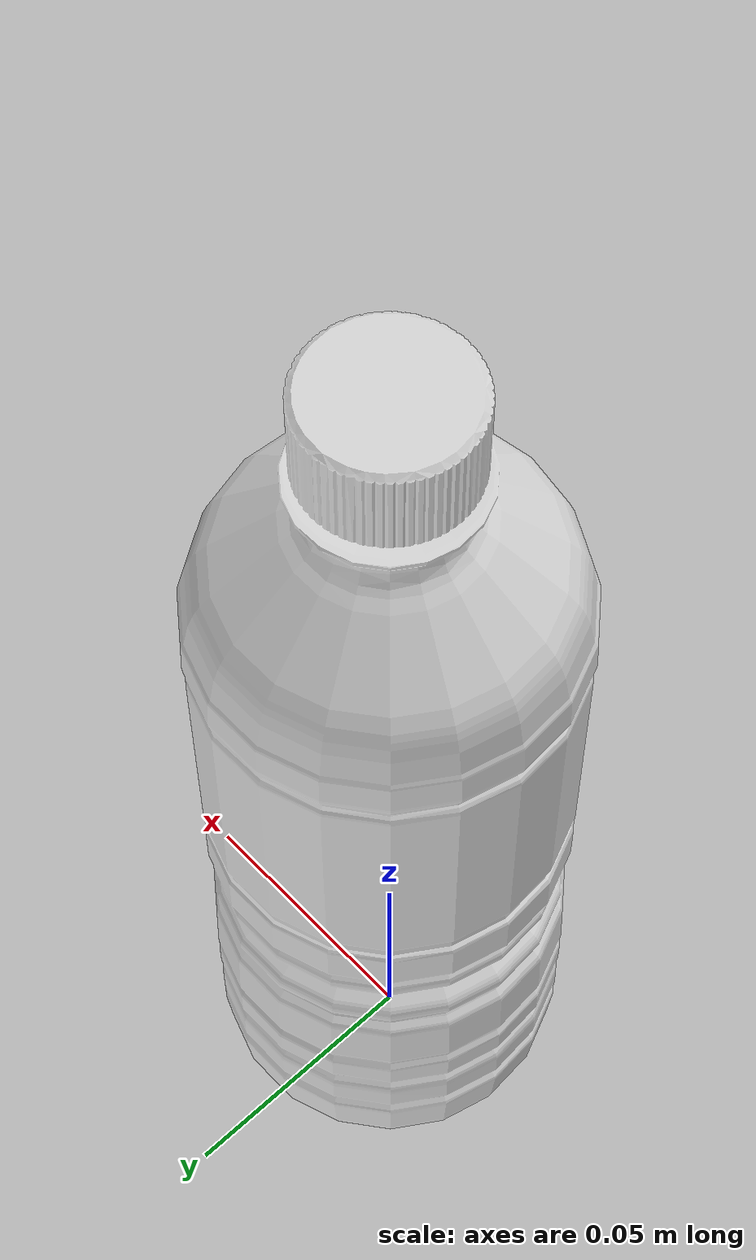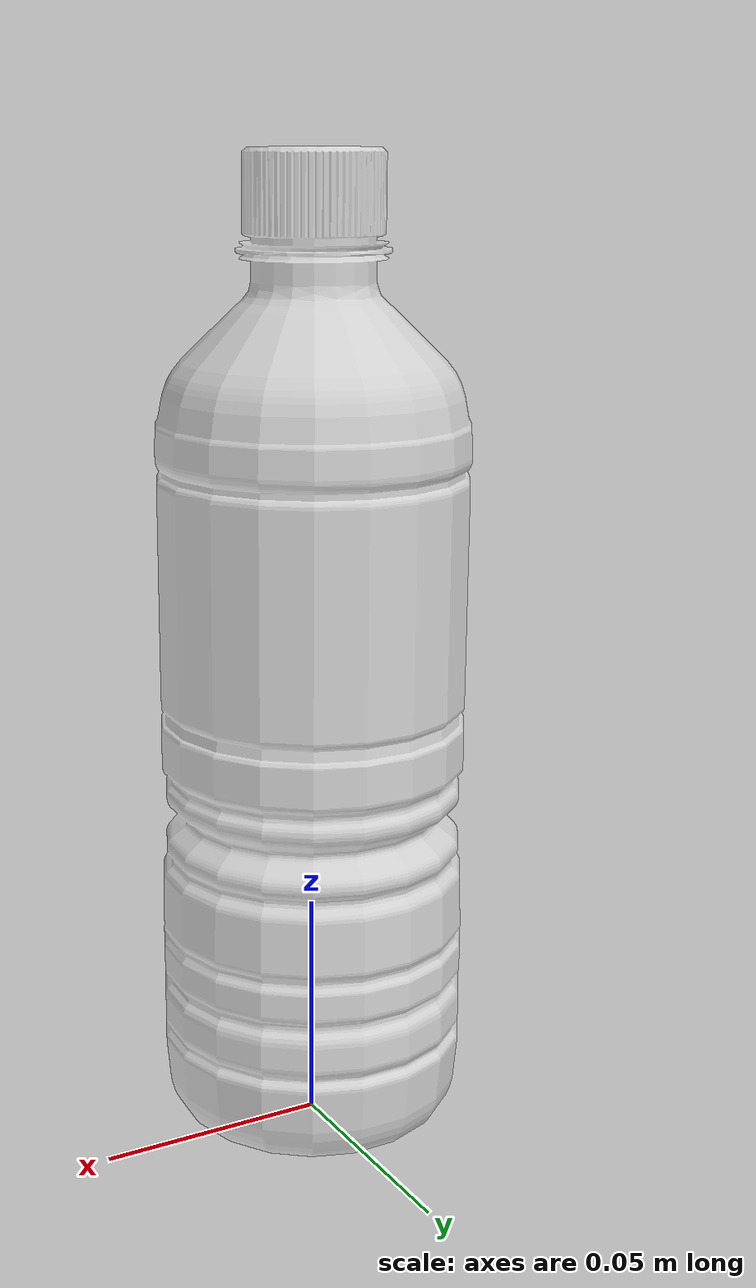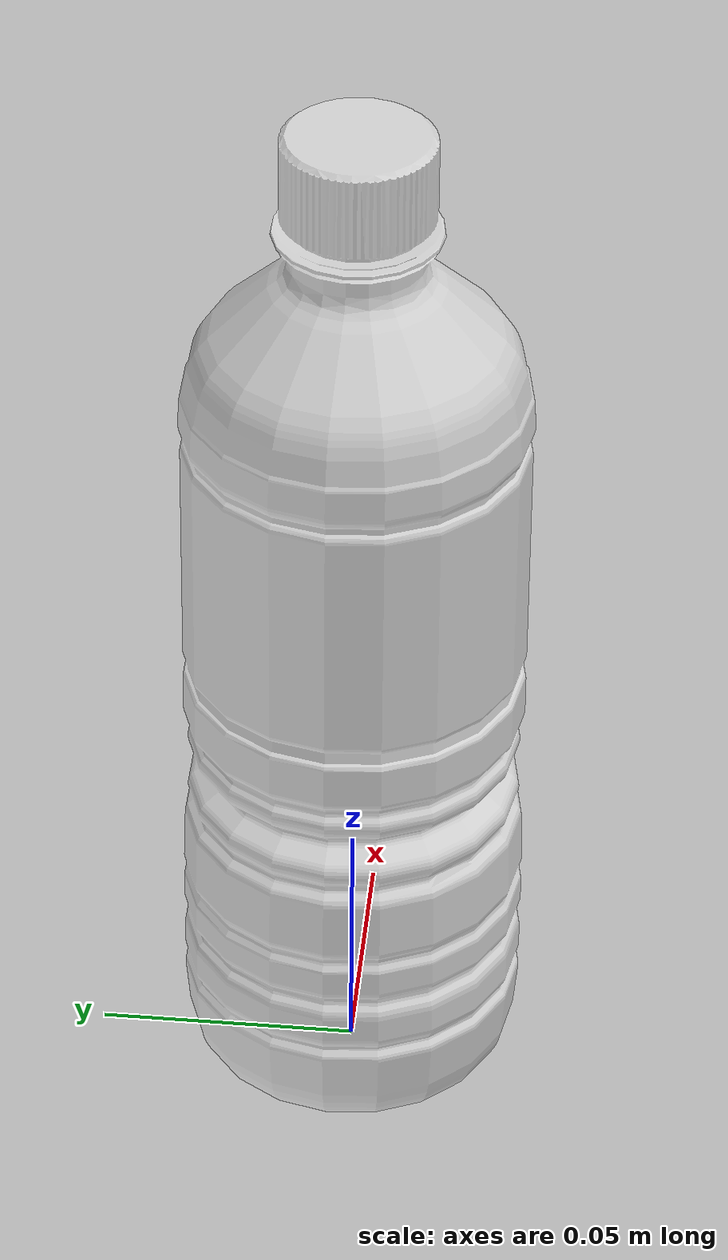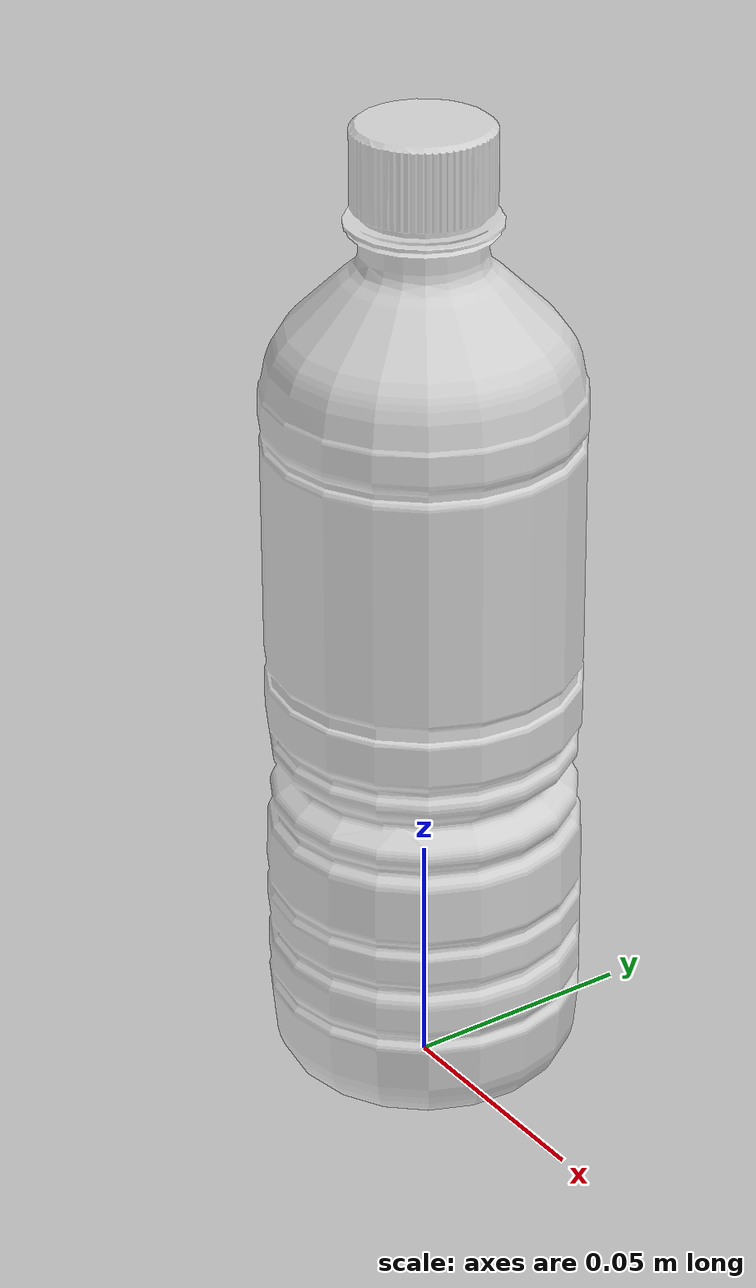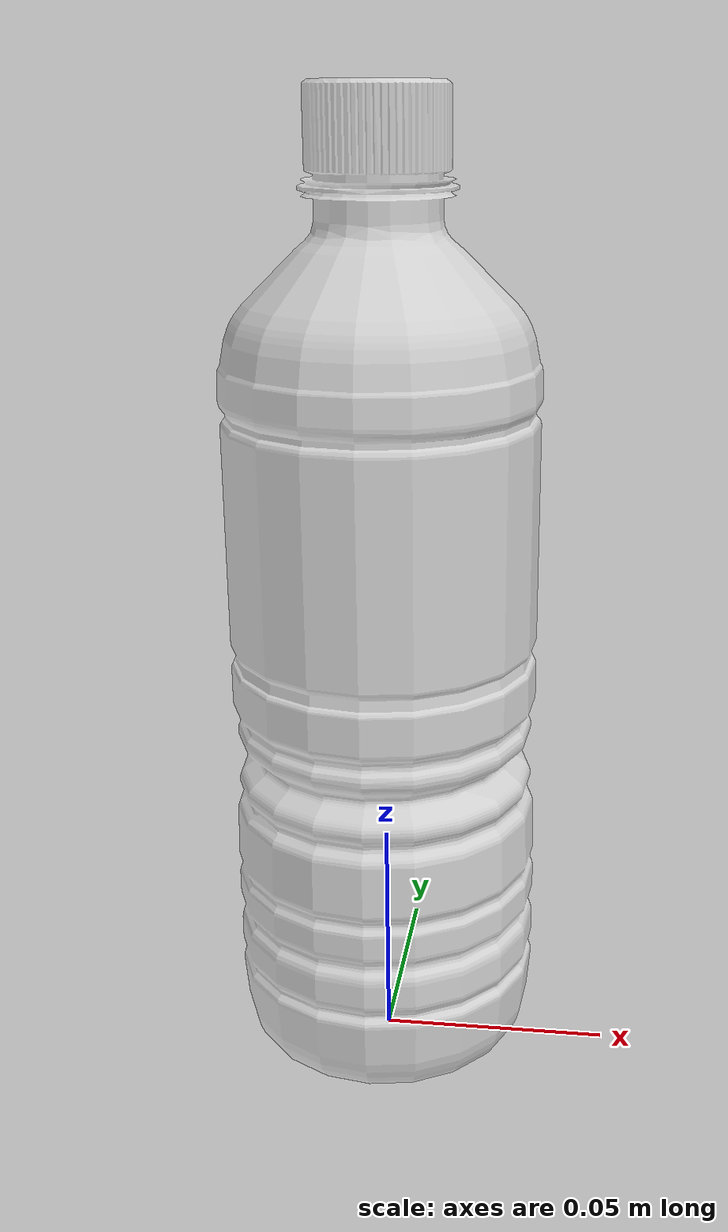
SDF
<?xml version='1.0'?>
<sdf version="1.4">
<model name="pet_model">
  <pose>0 0 0  0 0 0</pose>
  <static>true</static>
    <link name="link">

      <collision name="collision">
        <!-- TODO: not recognized in gazebo? -->
        <laser_retro>100</laser_retro>

        <geometry>
          <mesh><uri>model://pet_bottle/meshes/pet_bottle.dae</uri></mesh>
        </geometry>
      </collision>

      <visual name="visual">
        <geometry>
          <mesh><uri>model://pet_bottle/meshes/pet_bottle.dae</uri></mesh>
        </geometry>

        <!-- TODO: determine transparency value -->
        <transparency>0.3</transparency>

        <material>
          <script>
            <name>Gazebo/White</name>
          </script>
        </material>

      </visual>
    </link>
  </model>
</sdf>
